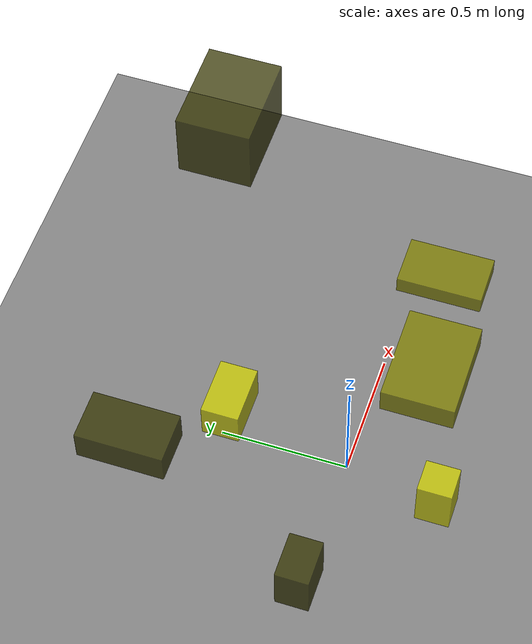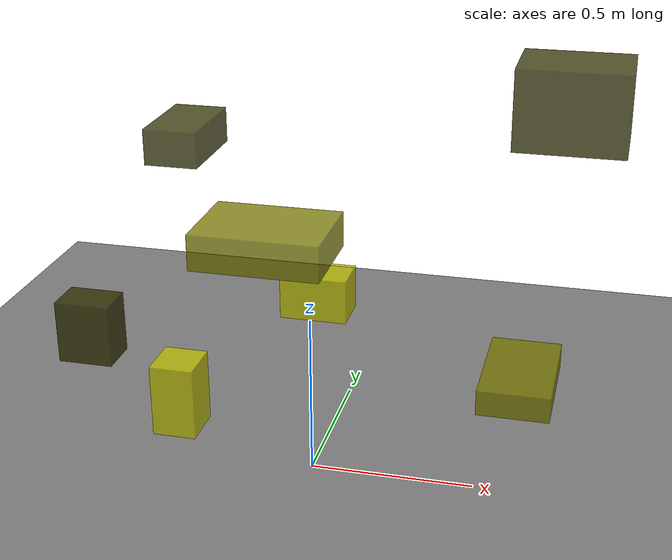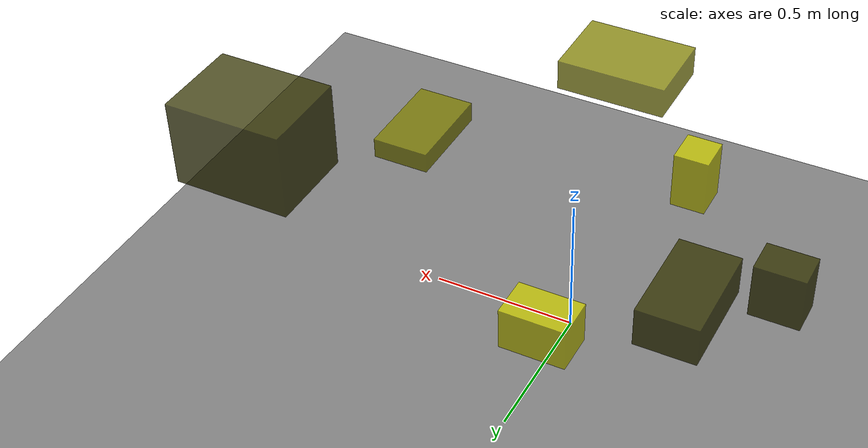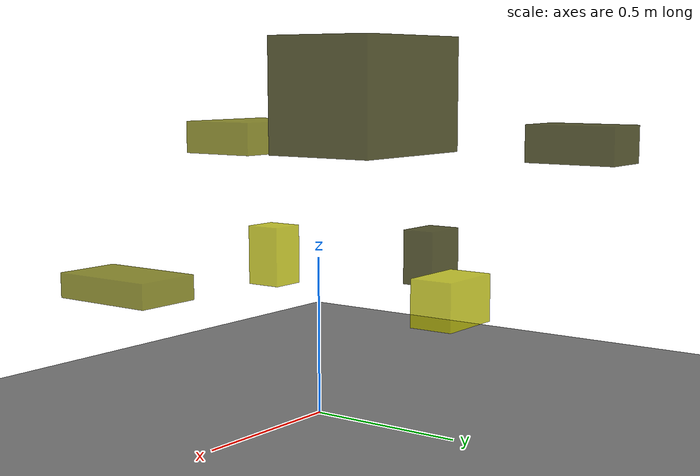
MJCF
<?xml version="1.0"?>
<mujoco model="obstacle_scene">
  <compiler angle="radian" coordinate="local"/>
  <option timestep="0.001" gravity="0 0 -9.81"/>

  <asset>
    <material name="obstacle_mat" rgba="0.8 0.8 0.0 0.8"/>
    <material name="ground_mat" rgba="0.5 0.5 0.5 1"/>
  </asset>

  <worldbody>
    <!-- Ground plane -->
    <geom name="ground" type="plane" size="3 3 0.1" material="ground_mat"/>

    <!-- Obstacles -->
    <body name="obstacle_0" pos="-0.592982 0.600261 0.846350">
      <geom name="obs_0" type="box" size="0.090689 0.155547 0.060948" rgba="0.2 0.2 0.0 0.8"/>
    </body>
    <body name="obstacle_1" pos="-0.034955 -0.292392 0.868188">
      <geom name="obs_1" type="box" size="0.176764 0.129209 0.050246" rgba="0.5 0.5 0.0 0.8"/>
    </body>
    <body name="obstacle_2" pos="-0.258769 -0.403559 0.443794">
      <geom name="obs_2" type="box" size="0.060098 0.062952 0.101769" rgba="0.8 0.8 0.0 0.8"/>
    </body>
    <body name="obstacle_3" pos="-0.690443 -0.032334 0.419176">
      <geom name="obs_3" type="box" size="0.084899 0.061639 0.097588" rgba="0.2 0.2 0.0 0.8"/>
    </body>
    <body name="obstacle_4" pos="0.640621 -0.178104 0.481307">
      <geom name="obs_4" type="box" size="0.097803 0.162647 0.035635" rgba="0.5 0.5 0.0 0.8"/>
    </body>
    <body name="obstacle_5" pos="-0.091612 0.428991 0.396595">
      <geom name="obs_5" type="box" size="0.110810 0.070765 0.073770" rgba="0.8 0.8 0.0 0.8"/>
    </body>
    <body name="obstacle_6" pos="0.689388 0.682023 1.021589">
      <geom name="obs_6" type="box" size="0.180268 0.138079 0.133567" rgba="0.2 0.2 0.0 0.8"/>
    </body>
  </worldbody>
</mujoco>
